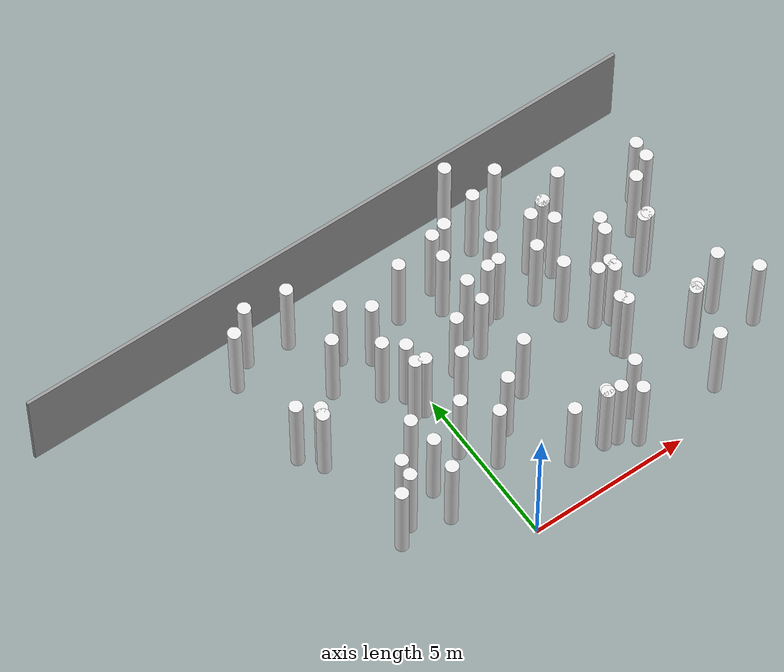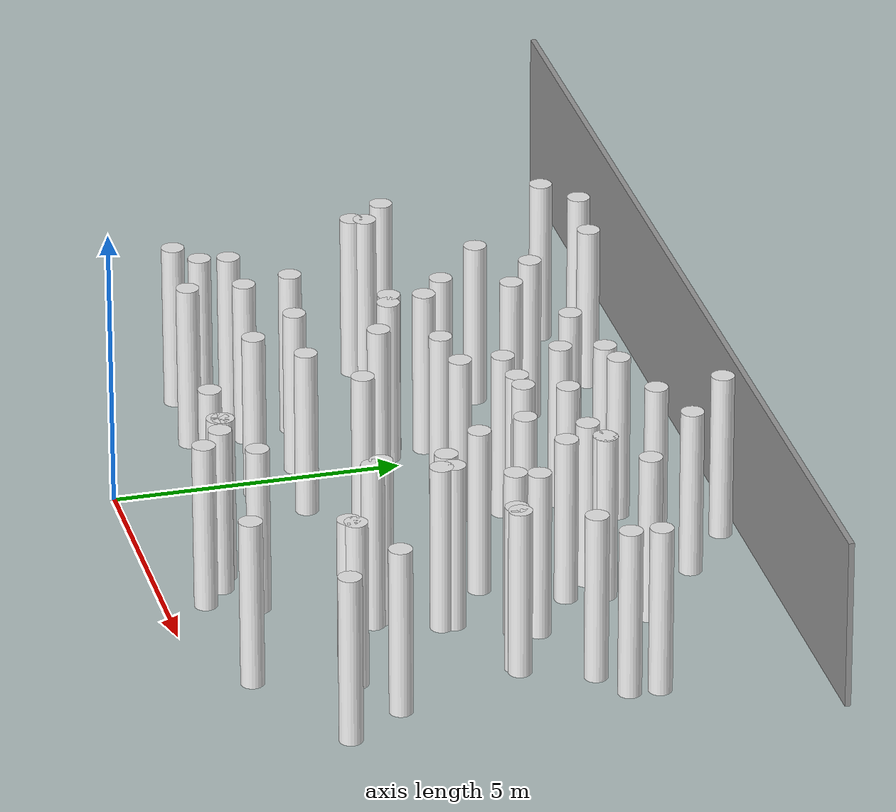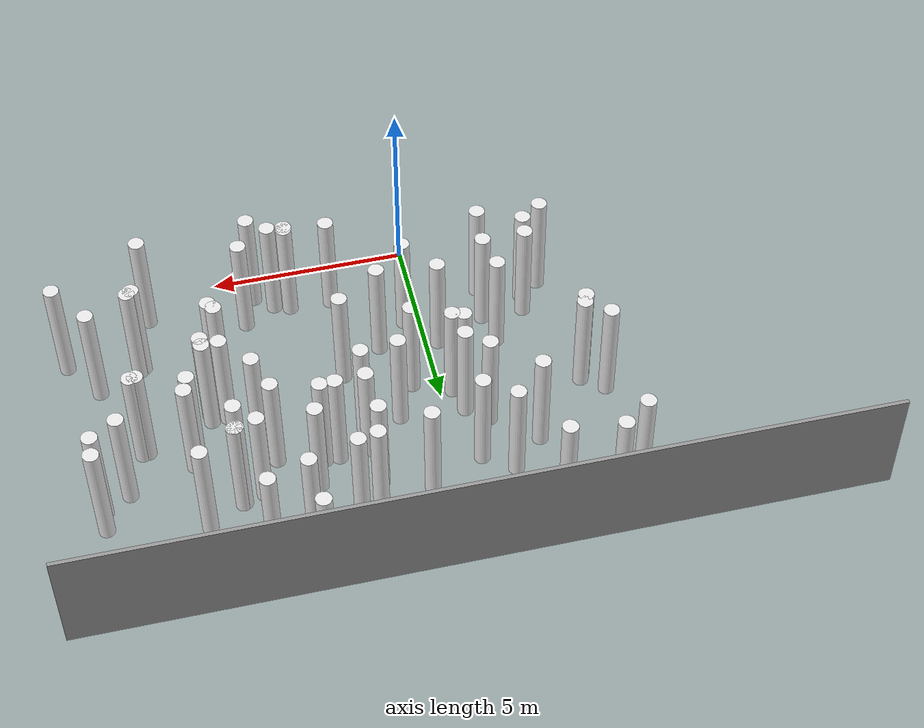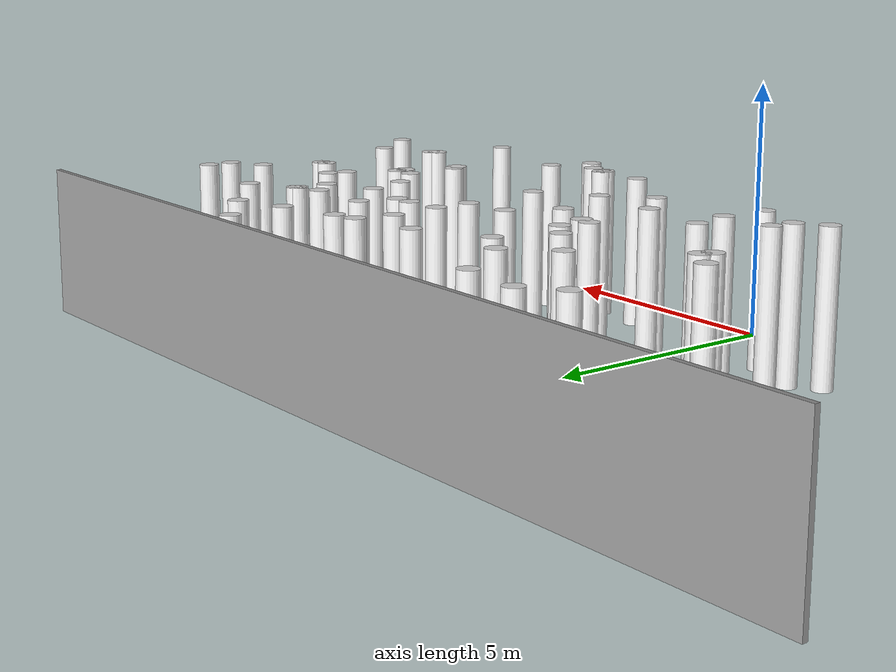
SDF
<sdf version="1.5">
 <world name="default">
  <include><uri>model://sun</uri></include>
  <model name="box_3">
   <pose>-0.04999999999999982 10.05 1.5  0 0 0</pose>
   <static>true</static>
   <link name="link">
    <collision name="collision">
     <geometry><box><size>20.1 0.09999999999999964 3.0</size></box></geometry>
    </collision>
    <visual name="visual">
     <geometry><box><size>20.1 0.09999999999999964 3.0</size></box></geometry>
     <material>
      <script><name>Gazebo/Grey</name><uri>file://media/materials/scripts/gazebo.material</uri></script>
     </material>
    </visual>
   </link>
  </model>
  <model name="cylinder_3">
   <pose>-3.57165334212 5.28644316603 1.5  0 0 0</pose>
   <static>true</static>
   <link name="link">
    <collision name="collision">
     <geometry><cylinder><radius>0.2</radius><length>3.0</length></cylinder></geometry>
    </collision>
    <visual name="visual">
     <geometry><cylinder><radius>0.2</radius><length>3.0</length></cylinder></geometry>
     <material>
      <script><name>Gazebo/White</name><uri>file://media/materials/scripts/gazebo.material</uri></script>
     </material>
    </visual>
   </link>
  </model>
  <model name="cylinder_9">
   <pose>7.42917851312 5.15135414426 1.5  0 0 0</pose>
   <static>true</static>
   <link name="link">
    <collision name="collision">
     <geometry><cylinder><radius>0.2</radius><length>3.0</length></cylinder></geometry>
    </collision>
    <visual name="visual">
     <geometry><cylinder><radius>0.2</radius><length>3.0</length></cylinder></geometry>
     <material>
      <script><name>Gazebo/White</name><uri>file://media/materials/scripts/gazebo.material</uri></script>
     </material>
    </visual>
   </link>
  </model>
  <model name="cylinder_13">
   <pose>-0.603429975117 4.98804520344 1.5  0 0 0</pose>
   <static>true</static>
   <link name="link">
    <collision name="collision">
     <geometry><cylinder><radius>0.2</radius><length>3.0</length></cylinder></geometry>
    </collision>
    <visual name="visual">
     <geometry><cylinder><radius>0.2</radius><length>3.0</length></cylinder></geometry>
     <material>
      <script><name>Gazebo/White</name><uri>file://media/materials/scripts/gazebo.material</uri></script>
     </material>
    </visual>
   </link>
  </model>
  <model name="cylinder_15">
   <pose>0.389787638363 2.38360374222 1.5  0 0 0</pose>
   <static>true</static>
   <link name="link">
    <collision name="collision">
     <geometry><cylinder><radius>0.2</radius><length>3.0</length></cylinder></geometry>
    </collision>
    <visual name="visual">
     <geometry><cylinder><radius>0.2</radius><length>3.0</length></cylinder></geometry>
     <material>
      <script><name>Gazebo/White</name><uri>file://media/materials/scripts/gazebo.material</uri></script>
     </material>
    </visual>
   </link>
  </model>
  <model name="cylinder_18">
   <pose>5.75627242643 4.52410663655 1.5  0 0 0</pose>
   <static>true</static>
   <link name="link">
    <collision name="collision">
     <geometry><cylinder><radius>0.2</radius><length>3.0</length></cylinder></geometry>
    </collision>
    <visual name="visual">
     <geometry><cylinder><radius>0.2</radius><length>3.0</length></cylinder></geometry>
     <material>
      <script><name>Gazebo/White</name><uri>file://media/materials/scripts/gazebo.material</uri></script>
     </material>
    </visual>
   </link>
  </model>
  <model name="cylinder_26">
   <pose>8.68435972278 6.73024260488 1.5  0 0 0</pose>
   <static>true</static>
   <link name="link">
    <collision name="collision">
     <geometry><cylinder><radius>0.2</radius><length>3.0</length></cylinder></geometry>
    </collision>
    <visual name="visual">
     <geometry><cylinder><radius>0.2</radius><length>3.0</length></cylinder></geometry>
     <material>
      <script><name>Gazebo/White</name><uri>file://media/materials/scripts/gazebo.material</uri></script>
     </material>
    </visual>
   </link>
  </model>
  <model name="cylinder_27">
   <pose>1.19057691846 3.10215745725 1.5  0 0 0</pose>
   <static>true</static>
   <link name="link">
    <collision name="collision">
     <geometry><cylinder><radius>0.2</radius><length>3.0</length></cylinder></geometry>
    </collision>
    <visual name="visual">
     <geometry><cylinder><radius>0.2</radius><length>3.0</length></cylinder></geometry>
     <material>
      <script><name>Gazebo/White</name><uri>file://media/materials/scripts/gazebo.material</uri></script>
     </material>
    </visual>
   </link>
  </model>
  <model name="cylinder_28">
   <pose>8.71213821655 7.2407370728 1.5  0 0 0</pose>
   <static>true</static>
   <link name="link">
    <collision name="collision">
     <geometry><cylinder><radius>0.2</radius><length>3.0</length></cylinder></geometry>
    </collision>
    <visual name="visual">
     <geometry><cylinder><radius>0.2</radius><length>3.0</length></cylinder></geometry>
     <material>
      <script><name>Gazebo/White</name><uri>file://media/materials/scripts/gazebo.material</uri></script>
     </material>
    </visual>
   </link>
  </model>
  <model name="cylinder_31">
   <pose>5.41172631743 3.23236437206 1.5  0 0 0</pose>
   <static>true</static>
   <link name="link">
    <collision name="collision">
     <geometry><cylinder><radius>0.2</radius><length>3.0</length></cylinder></geometry>
    </collision>
    <visual name="visual">
     <geometry><cylinder><radius>0.2</radius><length>3.0</length></cylinder></geometry>
     <material>
      <script><name>Gazebo/White</name><uri>file://media/materials/scripts/gazebo.material</uri></script>
     </material>
    </visual>
   </link>
  </model>
  <model name="cylinder_33">
   <pose>6.84010754183 0.846771831331 1.5  0 0 0</pose>
   <static>true</static>
   <link name="link">
    <collision name="collision">
     <geometry><cylinder><radius>0.2</radius><length>3.0</length></cylinder></geometry>
    </collision>
    <visual name="visual">
     <geometry><cylinder><radius>0.2</radius><length>3.0</length></cylinder></geometry>
     <material>
      <script><name>Gazebo/White</name><uri>file://media/materials/scripts/gazebo.material</uri></script>
     </material>
    </visual>
   </link>
  </model>
  <model name="cylinder_34">
   <pose>2.11115818259 1.23667951528 1.5  0 0 0</pose>
   <static>true</static>
   <link name="link">
    <collision name="collision">
     <geometry><cylinder><radius>0.2</radius><length>3.0</length></cylinder></geometry>
    </collision>
    <visual name="visual">
     <geometry><cylinder><radius>0.2</radius><length>3.0</length></cylinder></geometry>
     <material>
      <script><name>Gazebo/White</name><uri>file://media/materials/scripts/gazebo.material</uri></script>
     </material>
    </visual>
   </link>
  </model>
  <model name="cylinder_35">
   <pose>5.33574317188 4.49939920938 1.5  0 0 0</pose>
   <static>true</static>
   <link name="link">
    <collision name="collision">
     <geometry><cylinder><radius>0.2</radius><length>3.0</length></cylinder></geometry>
    </collision>
    <visual name="visual">
     <geometry><cylinder><radius>0.2</radius><length>3.0</length></cylinder></geometry>
     <material>
      <script><name>Gazebo/White</name><uri>file://media/materials/scripts/gazebo.material</uri></script>
     </material>
    </visual>
   </link>
  </model>
  <model name="cylinder_36">
   <pose>4.38933233178 1.52820655671 1.5  0 0 0</pose>
   <static>true</static>
   <link name="link">
    <collision name="collision">
     <geometry><cylinder><radius>0.2</radius><length>3.0</length></cylinder></geometry>
    </collision>
    <visual name="visual">
     <geometry><cylinder><radius>0.2</radius><length>3.0</length></cylinder></geometry>
     <material>
      <script><name>Gazebo/White</name><uri>file://media/materials/scripts/gazebo.material</uri></script>
     </material>
    </visual>
   </link>
  </model>
  <model name="cylinder_39">
   <pose>-2.7844474214 2.16016347226 1.5  0 0 0</pose>
   <static>true</static>
   <link name="link">
    <collision name="collision">
     <geometry><cylinder><radius>0.2</radius><length>3.0</length></cylinder></geometry>
    </collision>
    <visual name="visual">
     <geometry><cylinder><radius>0.2</radius><length>3.0</length></cylinder></geometry>
     <material>
      <script><name>Gazebo/White</name><uri>file://media/materials/scripts/gazebo.material</uri></script>
     </material>
    </visual>
   </link>
  </model>
  <model name="cylinder_42">
   <pose>7.17837514745 2.4030366884 1.5  0 0 0</pose>
   <static>true</static>
   <link name="link">
    <collision name="collision">
     <geometry><cylinder><radius>0.2</radius><length>3.0</length></cylinder></geometry>
    </collision>
    <visual name="visual">
     <geometry><cylinder><radius>0.2</radius><length>3.0</length></cylinder></geometry>
     <material>
      <script><name>Gazebo/White</name><uri>file://media/materials/scripts/gazebo.material</uri></script>
     </material>
    </visual>
   </link>
  </model>
  <model name="cylinder_46">
   <pose>9.07430429218 1.96268823712 1.5  0 0 0</pose>
   <static>true</static>
   <link name="link">
    <collision name="collision">
     <geometry><cylinder><radius>0.2</radius><length>3.0</length></cylinder></geometry>
    </collision>
    <visual name="visual">
     <geometry><cylinder><radius>0.2</radius><length>3.0</length></cylinder></geometry>
     <material>
      <script><name>Gazebo/White</name><uri>file://media/materials/scripts/gazebo.material</uri></script>
     </material>
    </visual>
   </link>
  </model>
  <model name="cylinder_48">
   <pose>-0.496940937456 5.57991217325 1.5  0 0 0</pose>
   <static>true</static>
   <link name="link">
    <collision name="collision">
     <geometry><cylinder><radius>0.2</radius><length>3.0</length></cylinder></geometry>
    </collision>
    <visual name="visual">
     <geometry><cylinder><radius>0.2</radius><length>3.0</length></cylinder></geometry>
     <material>
      <script><name>Gazebo/White</name><uri>file://media/materials/scripts/gazebo.material</uri></script>
     </material>
    </visual>
   </link>
  </model>
  <model name="cylinder_54">
   <pose>3.47068155479 7.07573758665 1.5  0 0 0</pose>
   <static>true</static>
   <link name="link">
    <collision name="collision">
     <geometry><cylinder><radius>0.2</radius><length>3.0</length></cylinder></geometry>
    </collision>
    <visual name="visual">
     <geometry><cylinder><radius>0.2</radius><length>3.0</length></cylinder></geometry>
     <material>
      <script><name>Gazebo/White</name><uri>file://media/materials/scripts/gazebo.material</uri></script>
     </material>
    </visual>
   </link>
  </model>
  <model name="cylinder_55">
   <pose>6.28266629386 7.7297583857 1.5  0 0 0</pose>
   <static>true</static>
   <link name="link">
    <collision name="collision">
     <geometry><cylinder><radius>0.2</radius><length>3.0</length></cylinder></geometry>
    </collision>
    <visual name="visual">
     <geometry><cylinder><radius>0.2</radius><length>3.0</length></cylinder></geometry>
     <material>
      <script><name>Gazebo/White</name><uri>file://media/materials/scripts/gazebo.material</uri></script>
     </material>
    </visual>
   </link>
  </model>
  <model name="cylinder_58">
   <pose>-4.1233433859 5.71170081979 1.5  0 0 0</pose>
   <static>true</static>
   <link name="link">
    <collision name="collision">
     <geometry><cylinder><radius>0.2</radius><length>3.0</length></cylinder></geometry>
    </collision>
    <visual name="visual">
     <geometry><cylinder><radius>0.2</radius><length>3.0</length></cylinder></geometry>
     <material>
      <script><name>Gazebo/White</name><uri>file://media/materials/scripts/gazebo.material</uri></script>
     </material>
    </visual>
   </link>
  </model>
  <model name="cylinder_59">
   <pose>4.36966898715 6.09762204568 1.5  0 0 0</pose>
   <static>true</static>
   <link name="link">
    <collision name="collision">
     <geometry><cylinder><radius>0.2</radius><length>3.0</length></cylinder></geometry>
    </collision>
    <visual name="visual">
     <geometry><cylinder><radius>0.2</radius><length>3.0</length></cylinder></geometry>
     <material>
      <script><name>Gazebo/White</name><uri>file://media/materials/scripts/gazebo.material</uri></script>
     </material>
    </visual>
   </link>
  </model>
  <model name="cylinder_62">
   <pose>1.14145559018 5.46133663972 1.5  0 0 0</pose>
   <static>true</static>
   <link name="link">
    <collision name="collision">
     <geometry><cylinder><radius>0.2</radius><length>3.0</length></cylinder></geometry>
    </collision>
    <visual name="visual">
     <geometry><cylinder><radius>0.2</radius><length>3.0</length></cylinder></geometry>
     <material>
      <script><name>Gazebo/White</name><uri>file://media/materials/scripts/gazebo.material</uri></script>
     </material>
    </visual>
   </link>
  </model>
  <model name="cylinder_66">
   <pose>3.17736910828 1.21894448188 1.5  0 0 0</pose>
   <static>true</static>
   <link name="link">
    <collision name="collision">
     <geometry><cylinder><radius>0.2</radius><length>3.0</length></cylinder></geometry>
    </collision>
    <visual name="visual">
     <geometry><cylinder><radius>0.2</radius><length>3.0</length></cylinder></geometry>
     <material>
      <script><name>Gazebo/White</name><uri>file://media/materials/scripts/gazebo.material</uri></script>
     </material>
    </visual>
   </link>
  </model>
  <model name="cylinder_67">
   <pose>-4.18751683081 8.62479177987 1.5  0 0 0</pose>
   <static>true</static>
   <link name="link">
    <collision name="collision">
     <geometry><cylinder><radius>0.2</radius><length>3.0</length></cylinder></geometry>
    </collision>
    <visual name="visual">
     <geometry><cylinder><radius>0.2</radius><length>3.0</length></cylinder></geometry>
     <material>
      <script><name>Gazebo/White</name><uri>file://media/materials/scripts/gazebo.material</uri></script>
     </material>
    </visual>
   </link>
  </model>
  <model name="cylinder_71">
   <pose>3.86900656529 8.4967029692 1.5  0 0 0</pose>
   <static>true</static>
   <link name="link">
    <collision name="collision">
     <geometry><cylinder><radius>0.2</radius><length>3.0</length></cylinder></geometry>
    </collision>
    <visual name="visual">
     <geometry><cylinder><radius>0.2</radius><length>3.0</length></cylinder></geometry>
     <material>
      <script><name>Gazebo/White</name><uri>file://media/materials/scripts/gazebo.material</uri></script>
     </material>
    </visual>
   </link>
  </model>
  <model name="cylinder_77">
   <pose>4.88329497638 8.83456865395 1.5  0 0 0</pose>
   <static>true</static>
   <link name="link">
    <collision name="collision">
     <geometry><cylinder><radius>0.2</radius><length>3.0</length></cylinder></geometry>
    </collision>
    <visual name="visual">
     <geometry><cylinder><radius>0.2</radius><length>3.0</length></cylinder></geometry>
     <material>
      <script><name>Gazebo/White</name><uri>file://media/materials/scripts/gazebo.material</uri></script>
     </material>
    </visual>
   </link>
  </model>
  <model name="cylinder_78">
   <pose>2.00472935746 7.32868068065 1.5  0 0 0</pose>
   <static>true</static>
   <link name="link">
    <collision name="collision">
     <geometry><cylinder><radius>0.2</radius><length>3.0</length></cylinder></geometry>
    </collision>
    <visual name="visual">
     <geometry><cylinder><radius>0.2</radius><length>3.0</length></cylinder></geometry>
     <material>
      <script><name>Gazebo/White</name><uri>file://media/materials/scripts/gazebo.material</uri></script>
     </material>
    </visual>
   </link>
  </model>
  <model name="cylinder_80">
   <pose>-3.30739838031 1.80659145497 1.5  0 0 0</pose>
   <static>true</static>
   <link name="link">
    <collision name="collision">
     <geometry><cylinder><radius>0.2</radius><length>3.0</length></cylinder></geometry>
    </collision>
    <visual name="visual">
     <geometry><cylinder><radius>0.2</radius><length>3.0</length></cylinder></geometry>
     <material>
      <script><name>Gazebo/White</name><uri>file://media/materials/scripts/gazebo.material</uri></script>
     </material>
    </visual>
   </link>
  </model>
  <model name="cylinder_81">
   <pose>4.05376818188 0.695457650734 1.5  0 0 0</pose>
   <static>true</static>
   <link name="link">
    <collision name="collision">
     <geometry><cylinder><radius>0.2</radius><length>3.0</length></cylinder></geometry>
    </collision>
    <visual name="visual">
     <geometry><cylinder><radius>0.2</radius><length>3.0</length></cylinder></geometry>
     <material>
      <script><name>Gazebo/White</name><uri>file://media/materials/scripts/gazebo.material</uri></script>
     </material>
    </visual>
   </link>
  </model>
  <model name="cylinder_87">
   <pose>-2.09398586988 6.89432243899 1.5  0 0 0</pose>
   <static>true</static>
   <link name="link">
    <collision name="collision">
     <geometry><cylinder><radius>0.2</radius><length>3.0</length></cylinder></geometry>
    </collision>
    <visual name="visual">
     <geometry><cylinder><radius>0.2</radius><length>3.0</length></cylinder></geometry>
     <material>
      <script><name>Gazebo/White</name><uri>file://media/materials/scripts/gazebo.material</uri></script>
     </material>
    </visual>
   </link>
  </model>
  <model name="cylinder_91">
   <pose>-1.7059078772 1.70830248563 1.5  0 0 0</pose>
   <static>true</static>
   <link name="link">
    <collision name="collision">
     <geometry><cylinder><radius>0.2</radius><length>3.0</length></cylinder></geometry>
    </collision>
    <visual name="visual">
     <geometry><cylinder><radius>0.2</radius><length>3.0</length></cylinder></geometry>
     <material>
      <script><name>Gazebo/White</name><uri>file://media/materials/scripts/gazebo.material</uri></script>
     </material>
    </visual>
   </link>
  </model>
  <model name="cylinder_96">
   <pose>5.76722695259 4.30930702497 1.5  0 0 0</pose>
   <static>true</static>
   <link name="link">
    <collision name="collision">
     <geometry><cylinder><radius>0.2</radius><length>3.0</length></cylinder></geometry>
    </collision>
    <visual name="visual">
     <geometry><cylinder><radius>0.2</radius><length>3.0</length></cylinder></geometry>
     <material>
      <script><name>Gazebo/White</name><uri>file://media/materials/scripts/gazebo.material</uri></script>
     </material>
    </visual>
   </link>
  </model>
  <model name="cylinder_100">
   <pose>-1.01710498851 6.00992164947 1.5  0 0 0</pose>
   <static>true</static>
   <link name="link">
    <collision name="collision">
     <geometry><cylinder><radius>0.2</radius><length>3.0</length></cylinder></geometry>
    </collision>
    <visual name="visual">
     <geometry><cylinder><radius>0.2</radius><length>3.0</length></cylinder></geometry>
     <material>
      <script><name>Gazebo/White</name><uri>file://media/materials/scripts/gazebo.material</uri></script>
     </material>
    </visual>
   </link>
  </model>
  <model name="cylinder_102">
   <pose>2.16042498126 8.06735175076 1.5  0 0 0</pose>
   <static>true</static>
   <link name="link">
    <collision name="collision">
     <geometry><cylinder><radius>0.2</radius><length>3.0</length></cylinder></geometry>
    </collision>
    <visual name="visual">
     <geometry><cylinder><radius>0.2</radius><length>3.0</length></cylinder></geometry>
     <material>
      <script><name>Gazebo/White</name><uri>file://media/materials/scripts/gazebo.material</uri></script>
     </material>
    </visual>
   </link>
  </model>
  <model name="cylinder_103">
   <pose>-1.62306350108 2.68060876172 1.5  0 0 0</pose>
   <static>true</static>
   <link name="link">
    <collision name="collision">
     <geometry><cylinder><radius>0.2</radius><length>3.0</length></cylinder></geometry>
    </collision>
    <visual name="visual">
     <geometry><cylinder><radius>0.2</radius><length>3.0</length></cylinder></geometry>
     <material>
      <script><name>Gazebo/White</name><uri>file://media/materials/scripts/gazebo.material</uri></script>
     </material>
    </visual>
   </link>
  </model>
  <model name="cylinder_104">
   <pose>5.35774373051 7.19669851019 1.5  0 0 0</pose>
   <static>true</static>
   <link name="link">
    <collision name="collision">
     <geometry><cylinder><radius>0.2</radius><length>3.0</length></cylinder></geometry>
    </collision>
    <visual name="visual">
     <geometry><cylinder><radius>0.2</radius><length>3.0</length></cylinder></geometry>
     <material>
      <script><name>Gazebo/White</name><uri>file://media/materials/scripts/gazebo.material</uri></script>
     </material>
    </visual>
   </link>
  </model>
  <model name="cylinder_105">
   <pose>-0.322796270311 4.91099453164 1.5  0 0 0</pose>
   <static>true</static>
   <link name="link">
    <collision name="collision">
     <geometry><cylinder><radius>0.2</radius><length>3.0</length></cylinder></geometry>
    </collision>
    <visual name="visual">
     <geometry><cylinder><radius>0.2</radius><length>3.0</length></cylinder></geometry>
     <material>
      <script><name>Gazebo/White</name><uri>file://media/materials/scripts/gazebo.material</uri></script>
     </material>
    </visual>
   </link>
  </model>
  <model name="cylinder_108">
   <pose>2.85657139912 6.34893946682 1.5  0 0 0</pose>
   <static>true</static>
   <link name="link">
    <collision name="collision">
     <geometry><cylinder><radius>0.2</radius><length>3.0</length></cylinder></geometry>
    </collision>
    <visual name="visual">
     <geometry><cylinder><radius>0.2</radius><length>3.0</length></cylinder></geometry>
     <material>
      <script><name>Gazebo/White</name><uri>file://media/materials/scripts/gazebo.material</uri></script>
     </material>
    </visual>
   </link>
  </model>
  <model name="cylinder_111">
   <pose>-1.29449276508 7.66462057967 1.5  0 0 0</pose>
   <static>true</static>
   <link name="link">
    <collision name="collision">
     <geometry><cylinder><radius>0.2</radius><length>3.0</length></cylinder></geometry>
    </collision>
    <visual name="visual">
     <geometry><cylinder><radius>0.2</radius><length>3.0</length></cylinder></geometry>
     <material>
      <script><name>Gazebo/White</name><uri>file://media/materials/scripts/gazebo.material</uri></script>
     </material>
    </visual>
   </link>
  </model>
  <model name="cylinder_113">
   <pose>2.10431458988 6.29867500835 1.5  0 0 0</pose>
   <static>true</static>
   <link name="link">
    <collision name="collision">
     <geometry><cylinder><radius>0.2</radius><length>3.0</length></cylinder></geometry>
    </collision>
    <visual name="visual">
     <geometry><cylinder><radius>0.2</radius><length>3.0</length></cylinder></geometry>
     <material>
      <script><name>Gazebo/White</name><uri>file://media/materials/scripts/gazebo.material</uri></script>
     </material>
    </visual>
   </link>
  </model>
  <model name="cylinder_114">
   <pose>-2.71422930607 2.65702377336 1.5  0 0 0</pose>
   <static>true</static>
   <link name="link">
    <collision name="collision">
     <geometry><cylinder><radius>0.2</radius><length>3.0</length></cylinder></geometry>
    </collision>
    <visual name="visual">
     <geometry><cylinder><radius>0.2</radius><length>3.0</length></cylinder></geometry>
     <material>
      <script><name>Gazebo/White</name><uri>file://media/materials/scripts/gazebo.material</uri></script>
     </material>
    </visual>
   </link>
  </model>
  <model name="cylinder_116">
   <pose>6.25697373415 5.43562814421 1.5  0 0 0</pose>
   <static>true</static>
   <link name="link">
    <collision name="collision">
     <geometry><cylinder><radius>0.2</radius><length>3.0</length></cylinder></geometry>
    </collision>
    <visual name="visual">
     <geometry><cylinder><radius>0.2</radius><length>3.0</length></cylinder></geometry>
     <material>
      <script><name>Gazebo/White</name><uri>file://media/materials/scripts/gazebo.material</uri></script>
     </material>
    </visual>
   </link>
  </model>
  <model name="cylinder_117">
   <pose>7.29137307518 2.49274521675 1.5  0 0 0</pose>
   <static>true</static>
   <link name="link">
    <collision name="collision">
     <geometry><cylinder><radius>0.2</radius><length>3.0</length></cylinder></geometry>
    </collision>
    <visual name="visual">
     <geometry><cylinder><radius>0.2</radius><length>3.0</length></cylinder></geometry>
     <material>
      <script><name>Gazebo/White</name><uri>file://media/materials/scripts/gazebo.material</uri></script>
     </material>
    </visual>
   </link>
  </model>
  <model name="cylinder_120">
   <pose>0.829035930511 7.81645806841 1.5  0 0 0</pose>
   <static>true</static>
   <link name="link">
    <collision name="collision">
     <geometry><cylinder><radius>0.2</radius><length>3.0</length></cylinder></geometry>
    </collision>
    <visual name="visual">
     <geometry><cylinder><radius>0.2</radius><length>3.0</length></cylinder></geometry>
     <material>
      <script><name>Gazebo/White</name><uri>file://media/materials/scripts/gazebo.material</uri></script>
     </material>
    </visual>
   </link>
  </model>
  <model name="cylinder_129">
   <pose>3.57874456933 1.07750003644 1.5  0 0 0</pose>
   <static>true</static>
   <link name="link">
    <collision name="collision">
     <geometry><cylinder><radius>0.2</radius><length>3.0</length></cylinder></geometry>
    </collision>
    <visual name="visual">
     <geometry><cylinder><radius>0.2</radius><length>3.0</length></cylinder></geometry>
     <material>
      <script><name>Gazebo/White</name><uri>file://media/materials/scripts/gazebo.material</uri></script>
     </material>
    </visual>
   </link>
  </model>
  <model name="cylinder_131">
   <pose>-0.322437528474 3.26015867546 1.5  0 0 0</pose>
   <static>true</static>
   <link name="link">
    <collision name="collision">
     <geometry><cylinder><radius>0.2</radius><length>3.0</length></cylinder></geometry>
    </collision>
    <visual name="visual">
     <geometry><cylinder><radius>0.2</radius><length>3.0</length></cylinder></geometry>
     <material>
      <script><name>Gazebo/White</name><uri>file://media/materials/scripts/gazebo.material</uri></script>
     </material>
    </visual>
   </link>
  </model>
  <model name="cylinder_134">
   <pose>-3.65696713731 5.06841341767 1.5  0 0 0</pose>
   <static>true</static>
   <link name="link">
    <collision name="collision">
     <geometry><cylinder><radius>0.2</radius><length>3.0</length></cylinder></geometry>
    </collision>
    <visual name="visual">
     <geometry><cylinder><radius>0.2</radius><length>3.0</length></cylinder></geometry>
     <material>
      <script><name>Gazebo/White</name><uri>file://media/materials/scripts/gazebo.material</uri></script>
     </material>
    </visual>
   </link>
  </model>
  <model name="cylinder_135">
   <pose>3.22729008789 6.3611490633 1.5  0 0 0</pose>
   <static>true</static>
   <link name="link">
    <collision name="collision">
     <geometry><cylinder><radius>0.2</radius><length>3.0</length></cylinder></geometry>
    </collision>
    <visual name="visual">
     <geometry><cylinder><radius>0.2</radius><length>3.0</length></cylinder></geometry>
     <material>
      <script><name>Gazebo/White</name><uri>file://media/materials/scripts/gazebo.material</uri></script>
     </material>
    </visual>
   </link>
  </model>
  <model name="cylinder_138">
   <pose>2.65175466618 8.17631328871 1.5  0 0 0</pose>
   <static>true</static>
   <link name="link">
    <collision name="collision">
     <geometry><cylinder><radius>0.2</radius><length>3.0</length></cylinder></geometry>
    </collision>
    <visual name="visual">
     <geometry><cylinder><radius>0.2</radius><length>3.0</length></cylinder></geometry>
     <material>
      <script><name>Gazebo/White</name><uri>file://media/materials/scripts/gazebo.material</uri></script>
     </material>
    </visual>
   </link>
  </model>
  <model name="cylinder_143">
   <pose>2.2653823429 3.83252295438 1.5  0 0 0</pose>
   <static>true</static>
   <link name="link">
    <collision name="collision">
     <geometry><cylinder><radius>0.2</radius><length>3.0</length></cylinder></geometry>
    </collision>
    <visual name="visual">
     <geometry><cylinder><radius>0.2</radius><length>3.0</length></cylinder></geometry>
     <material>
      <script><name>Gazebo/White</name><uri>file://media/materials/scripts/gazebo.material</uri></script>
     </material>
    </visual>
   </link>
  </model>
  <model name="cylinder_146">
   <pose>2.07949375066 5.56046251248 1.5  0 0 0</pose>
   <static>true</static>
   <link name="link">
    <collision name="collision">
     <geometry><cylinder><radius>0.2</radius><length>3.0</length></cylinder></geometry>
    </collision>
    <visual name="visual">
     <geometry><cylinder><radius>0.2</radius><length>3.0</length></cylinder></geometry>
     <material>
      <script><name>Gazebo/White</name><uri>file://media/materials/scripts/gazebo.material</uri></script>
     </material>
    </visual>
   </link>
  </model>
  <model name="cylinder_148">
   <pose>7.56560608534 5.17644563324 1.5  0 0 0</pose>
   <static>true</static>
   <link name="link">
    <collision name="collision">
     <geometry><cylinder><radius>0.2</radius><length>3.0</length></cylinder></geometry>
    </collision>
    <visual name="visual">
     <geometry><cylinder><radius>0.2</radius><length>3.0</length></cylinder></geometry>
     <material>
      <script><name>Gazebo/White</name><uri>file://media/materials/scripts/gazebo.material</uri></script>
     </material>
    </visual>
   </link>
  </model>
  <model name="cylinder_158">
   <pose>-2.20568311183 8.95930609108 1.5  0 0 0</pose>
   <static>true</static>
   <link name="link">
    <collision name="collision">
     <geometry><cylinder><radius>0.2</radius><length>3.0</length></cylinder></geometry>
    </collision>
    <visual name="visual">
     <geometry><cylinder><radius>0.2</radius><length>3.0</length></cylinder></geometry>
     <material>
      <script><name>Gazebo/White</name><uri>file://media/materials/scripts/gazebo.material</uri></script>
     </material>
    </visual>
   </link>
  </model>
  <model name="cylinder_159">
   <pose>5.38941638707 7.21406005148 1.5  0 0 0</pose>
   <static>true</static>
   <link name="link">
    <collision name="collision">
     <geometry><cylinder><radius>0.2</radius><length>3.0</length></cylinder></geometry>
    </collision>
    <visual name="visual">
     <geometry><cylinder><radius>0.2</radius><length>3.0</length></cylinder></geometry>
     <material>
      <script><name>Gazebo/White</name><uri>file://media/materials/scripts/gazebo.material</uri></script>
     </material>
    </visual>
   </link>
  </model>
  <model name="cylinder_160">
   <pose>-1.79349555422 3.52893087061 1.5  0 0 0</pose>
   <static>true</static>
   <link name="link">
    <collision name="collision">
     <geometry><cylinder><radius>0.2</radius><length>3.0</length></cylinder></geometry>
    </collision>
    <visual name="visual">
     <geometry><cylinder><radius>0.2</radius><length>3.0</length></cylinder></geometry>
     <material>
      <script><name>Gazebo/White</name><uri>file://media/materials/scripts/gazebo.material</uri></script>
     </material>
    </visual>
   </link>
  </model>
  <model name="cylinder_161">
   <pose>4.84670447573 7.04091421211 1.5  0 0 0</pose>
   <static>true</static>
   <link name="link">
    <collision name="collision">
     <geometry><cylinder><radius>0.2</radius><length>3.0</length></cylinder></geometry>
    </collision>
    <visual name="visual">
     <geometry><cylinder><radius>0.2</radius><length>3.0</length></cylinder></geometry>
     <material>
      <script><name>Gazebo/White</name><uri>file://media/materials/scripts/gazebo.material</uri></script>
     </material>
    </visual>
   </link>
  </model>
  <model name="cylinder_165">
   <pose>0.626300517107 4.50767618521 1.5  0 0 0</pose>
   <static>true</static>
   <link name="link">
    <collision name="collision">
     <geometry><cylinder><radius>0.2</radius><length>3.0</length></cylinder></geometry>
    </collision>
    <visual name="visual">
     <geometry><cylinder><radius>0.2</radius><length>3.0</length></cylinder></geometry>
     <material>
      <script><name>Gazebo/White</name><uri>file://media/materials/scripts/gazebo.material</uri></script>
     </material>
    </visual>
   </link>
  </model>
  <model name="cylinder_168">
   <pose>6.37174520987 5.81420646235 1.5  0 0 0</pose>
   <static>true</static>
   <link name="link">
    <collision name="collision">
     <geometry><cylinder><radius>0.2</radius><length>3.0</length></cylinder></geometry>
    </collision>
    <visual name="visual">
     <geometry><cylinder><radius>0.2</radius><length>3.0</length></cylinder></geometry>
     <material>
      <script><name>Gazebo/White</name><uri>file://media/materials/scripts/gazebo.material</uri></script>
     </material>
    </visual>
   </link>
  </model>
  <model name="cylinder_174">
   <pose>3.16803814386 1.13892831511 1.5  0 0 0</pose>
   <static>true</static>
   <link name="link">
    <collision name="collision">
     <geometry><cylinder><radius>0.2</radius><length>3.0</length></cylinder></geometry>
    </collision>
    <visual name="visual">
     <geometry><cylinder><radius>0.2</radius><length>3.0</length></cylinder></geometry>
     <material>
      <script><name>Gazebo/White</name><uri>file://media/materials/scripts/gazebo.material</uri></script>
     </material>
    </visual>
   </link>
  </model>
  <model name="cylinder_175">
   <pose>8.03391809138 6.33927913687 1.5  0 0 0</pose>
   <static>true</static>
   <link name="link">
    <collision name="collision">
     <geometry><cylinder><radius>0.2</radius><length>3.0</length></cylinder></geometry>
    </collision>
    <visual name="visual">
     <geometry><cylinder><radius>0.2</radius><length>3.0</length></cylinder></geometry>
     <material>
      <script><name>Gazebo/White</name><uri>file://media/materials/scripts/gazebo.material</uri></script>
     </material>
    </visual>
   </link>
  </model>
  <model name="cylinder_176">
   <pose>-0.560869710765 7.14218857797 1.5  0 0 0</pose>
   <static>true</static>
   <link name="link">
    <collision name="collision">
     <geometry><cylinder><radius>0.2</radius><length>3.0</length></cylinder></geometry>
    </collision>
    <visual name="visual">
     <geometry><cylinder><radius>0.2</radius><length>3.0</length></cylinder></geometry>
     <material>
      <script><name>Gazebo/White</name><uri>file://media/materials/scripts/gazebo.material</uri></script>
     </material>
    </visual>
   </link>
  </model>
  <model name="cylinder_180">
   <pose>5.32234318634 6.55152300965 1.5  0 0 0</pose>
   <static>true</static>
   <link name="link">
    <collision name="collision">
     <geometry><cylinder><radius>0.2</radius><length>3.0</length></cylinder></geometry>
    </collision>
    <visual name="visual">
     <geometry><cylinder><radius>0.2</radius><length>3.0</length></cylinder></geometry>
     <material>
      <script><name>Gazebo/White</name><uri>file://media/materials/scripts/gazebo.material</uri></script>
     </material>
    </visual>
   </link>
  </model>
  <model name="cylinder_184">
   <pose>5.29488842567 3.4020812089 1.5  0 0 0</pose>
   <static>true</static>
   <link name="link">
    <collision name="collision">
     <geometry><cylinder><radius>0.2</radius><length>3.0</length></cylinder></geometry>
    </collision>
    <visual name="visual">
     <geometry><cylinder><radius>0.2</radius><length>3.0</length></cylinder></geometry>
     <material>
      <script><name>Gazebo/White</name><uri>file://media/materials/scripts/gazebo.material</uri></script>
     </material>
    </visual>
   </link>
  </model>
  <model name="cylinder_185">
   <pose>4.67000094363 5.22981179946 1.5  0 0 0</pose>
   <static>true</static>
   <link name="link">
    <collision name="collision">
     <geometry><cylinder><radius>0.2</radius><length>3.0</length></cylinder></geometry>
    </collision>
    <visual name="visual">
     <geometry><cylinder><radius>0.2</radius><length>3.0</length></cylinder></geometry>
     <material>
      <script><name>Gazebo/White</name><uri>file://media/materials/scripts/gazebo.material</uri></script>
     </material>
    </visual>
   </link>
  </model>
  <model name="cylinder_186">
   <pose>8.35837671878 2.97238388445 1.5  0 0 0</pose>
   <static>true</static>
   <link name="link">
    <collision name="collision">
     <geometry><cylinder><radius>0.2</radius><length>3.0</length></cylinder></geometry>
    </collision>
    <visual name="visual">
     <geometry><cylinder><radius>0.2</radius><length>3.0</length></cylinder></geometry>
     <material>
      <script><name>Gazebo/White</name><uri>file://media/materials/scripts/gazebo.material</uri></script>
     </material>
    </visual>
   </link>
  </model>
  <model name="cylinder_196">
   <pose>3.7450122144 9.68412860929 1.5  0 0 0</pose>
   <static>true</static>
   <link name="link">
    <collision name="collision">
     <geometry><cylinder><radius>0.2</radius><length>3.0</length></cylinder></geometry>
    </collision>
    <visual name="visual">
     <geometry><cylinder><radius>0.2</radius><length>3.0</length></cylinder></geometry>
     <material>
      <script><name>Gazebo/White</name><uri>file://media/materials/scripts/gazebo.material</uri></script>
     </material>
    </visual>
   </link>
  </model>
  <model name="cylinder_199">
   <pose>-3.50913992264 9.1322353284 1.5  0 0 0</pose>
   <static>true</static>
   <link name="link">
    <collision name="collision">
     <geometry><cylinder><radius>0.2</radius><length>3.0</length></cylinder></geometry>
    </collision>
    <visual name="visual">
     <geometry><cylinder><radius>0.2</radius><length>3.0</length></cylinder></geometry>
     <material>
      <script><name>Gazebo/White</name><uri>file://media/materials/scripts/gazebo.material</uri></script>
     </material>
    </visual>
   </link>
  </model>
 </world>
</sdf>
